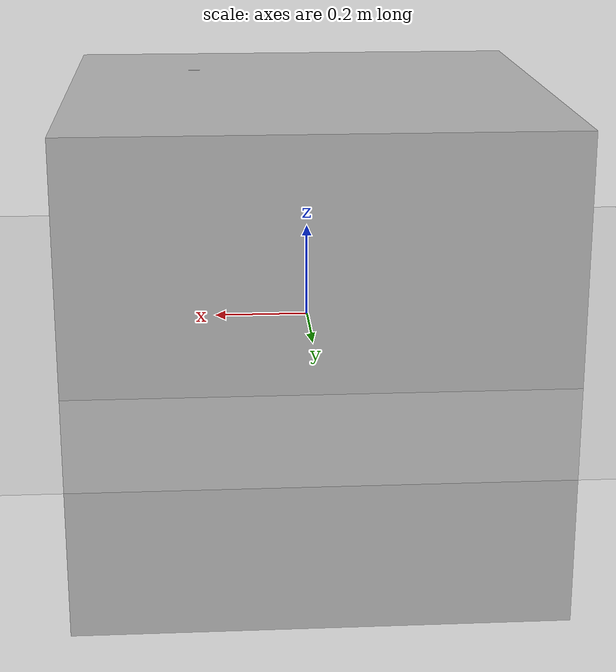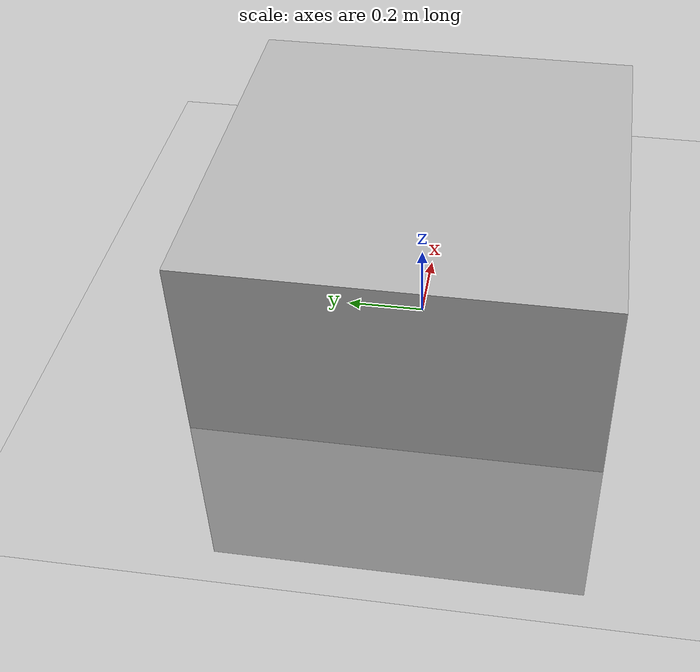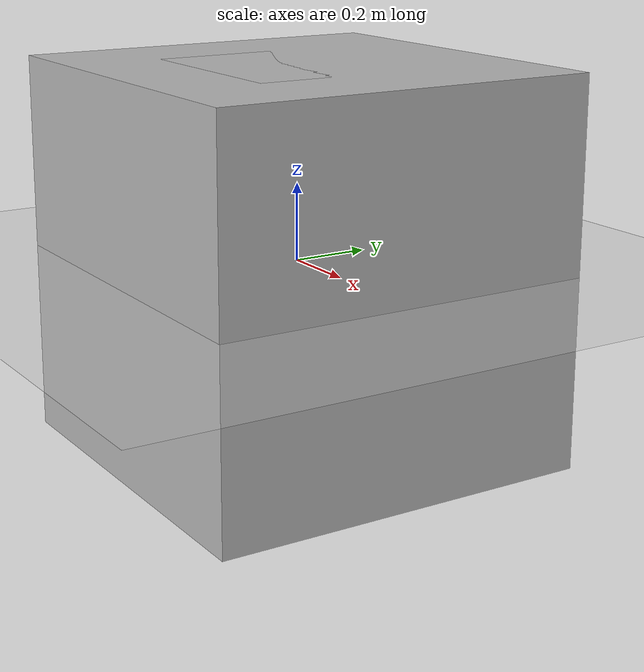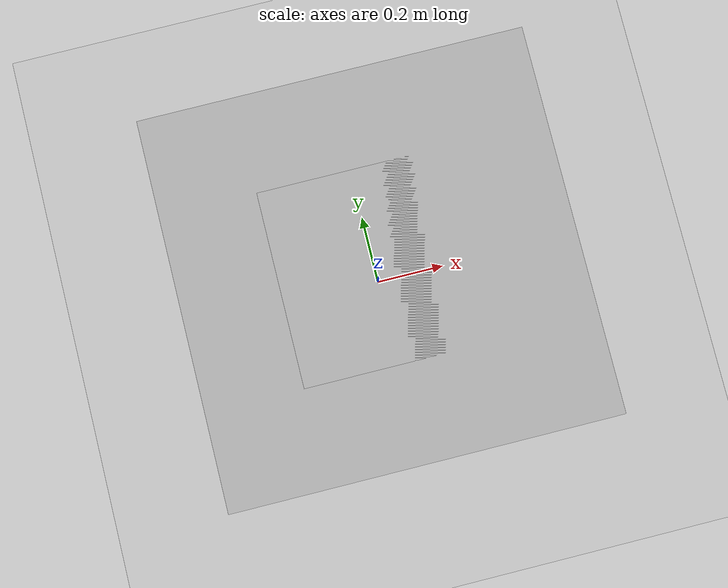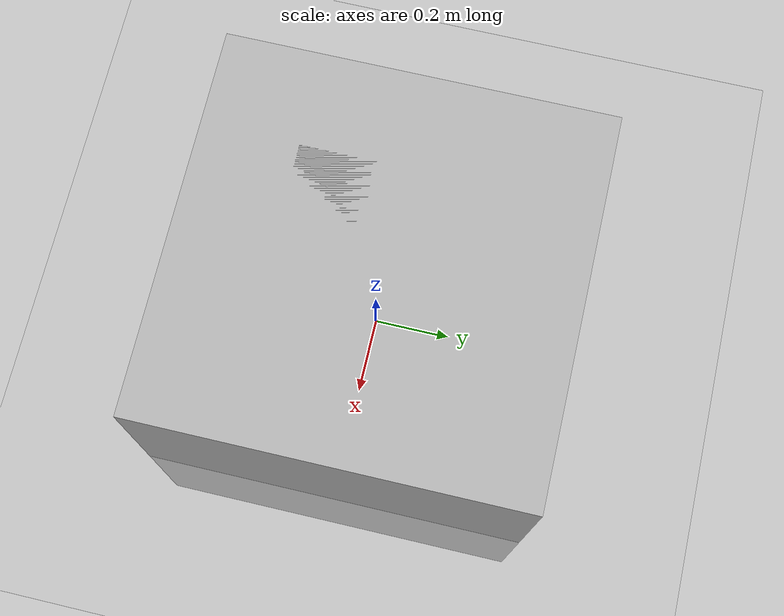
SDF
<?xml version="1.0"?>
<sdf version="1.4">
  <world name="modelmove_world">

    <!-- Ground Plane -->
    <include>
      <uri>model://ground_plane</uri>
    </include>

    <include>
      <uri>model://sun</uri>
    </include>

    <model name="box">
      <pose>0 0 0 0 0 0</pose>
      <link name="link">
        <collision name="collision">
          <geometry>
            <box>
              <size>0.5 0.5 1</size>
            </box>
          </geometry>
        </collision>

        <visual name="visual">
          <geometry>
            <box>
              <size>0.5 0.5 1</size>
            </box>
          </geometry>
        </visual>
      </link>

    <plugin name="model_move" filename="libmodel_move.so">
      <goals>
	      <pose>5 5 0 0 0 0</pose>
        <pose>5 -5 0 0 0 0</pose>
        <pose>0 0 0 0 0 0</pose>
      </goals>
      <speed>3.0</speed>
    </plugin>

    </model>

    <model name="teleport_model">
  <pose>0 0 0 0 0 0</pose>
  <link name="link">
    <collision name="collision">
      <geometry>
        <box>
          <size>1 1 1</size>
        </box>
      </geometry>
    </collision>
    <visual name="visual">
      <geometry>
        <box>
          <size>1 1 1</size>
        </box>
      </geometry>
    </visual>
  </link>
  <plugin name="teleport_model_plugin" filename="libteleport_model.so">
    <teleport_interval>10.0</teleport_interval>
    <goals>
      <pose>0 0 0 0 0 0</pose>
      <pose>5 0 0 0 0 0</pose>
      <pose>5 5 0 0 0 0</pose>
      <pose>0 5 0 0 0 0</pose>
    </goals>
  </plugin>
</model>

  </world>
</sdf>
